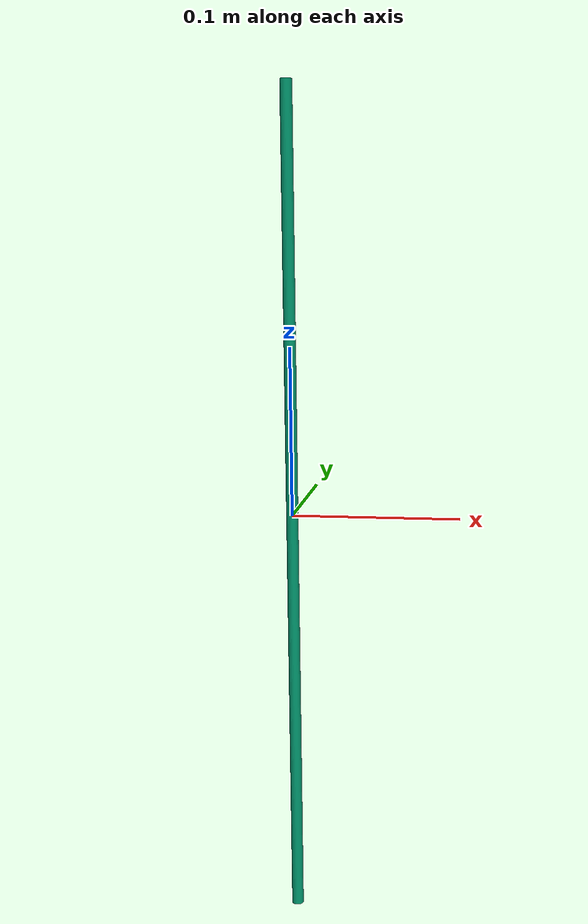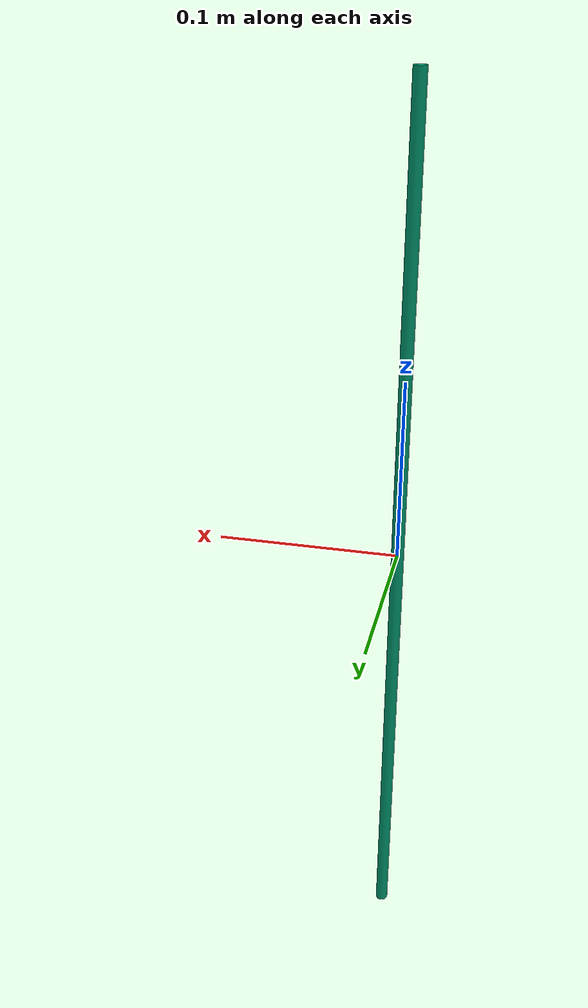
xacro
<?xml version="1.0"?>
<robot xmlns:xacro="http://www.ros.org/wiki/xacro" name="pole">
  <xacro:property name="PI" value="3.1415926535897931" />
  <xacro:property name="pole_l" value="0.5" />
  <xacro:property name="pole_r" value="0.0035" />
  <xacro:property name="pole_num_segments" value="40" />
  <xacro:property name="num_cylindrical_links" value="1" />

  <!-- Include statements for macros -->
  <xacro:include filename="cartesian_joint_macro.xacro"/>
  <xacro:include filename="spherical_joint_macro.xacro"/>
  <xacro:include filename="cylindrical_link_macro.xacro"/>

  <!-- Base link -->
  <link name="base_link"/>

  <!-- Instantiate the MAIN Cartesian Joint Macro -->
  <xacro:cartesian_joint prefix="cartesian" lower_limit="-0.5" upper_limit="0.5" effort="10000" velocity="1.5"/>

  <!-- Instantiate the MAIN Spherical Joint Macro -->
  <xacro:spherical_joint prefix="spherical" lower_limit="-${PI}" upper_limit="${PI}" effort="1" velocity="${PI/2}"/>

  <!-- Tool link is where the tip of the combined cartesian + spherical joints is at -->
  <link name="tool0"/>

  <!-- Connections between components -->

  <!-- Connect Cartesian joint system to the base -->
  <joint name="base_to_cartesian" type="fixed">
    <origin xyz="0 0 0" rpy="0 0 0"/>
    <parent link="base_link"/>
    <child link="cartesian_parent_link"/>
  </joint>

  <!-- Connect spherical joint to the top of the cartesian joint -->
  <joint name="cartesian_to_spherical" type="fixed">
    <origin xyz="0 0 0" rpy="0 0 0"/>
    <parent link="cartesian_z_link"/>
    <child link="spherical_parent_link"/>
  </joint>

  <!-- Connect the tool link with the the tip of the combined cartesian + spherical joints -->
  <joint name="spherical_to_tool0" type="fixed">
    <origin xyz="0 0 0" rpy="0 0 0"/>
    <parent link="spherical_roll_link"/>
    <child link="tool0"/>
  </joint>

  <!-- Instantiate the Cylindrical Link Macros -->
  <xacro:cylindrical_link prefix="cylindrical" length="${pole_l/num_cylindrical_links}" diameter="${2*pole_r}"/>

  <!-- Connect Cylindrical Link to the top of the tool -->
  <joint name="tool0_to_cylindrical" type="fixed">
    <origin xyz="0 0 0" rpy="0 0 0"/>
    <parent link="tool0"/>
    <child link="cylindrical_center_link"/>
  </joint>

  <!-- Create robot holding points as fixed links -->

  <xacro:macro name="add_pole_holder_link" params="segment_id num_segments pole_length">
    <link name="pole_holder_link_${segment_id}"></link>

    <joint name="pole_holder_fixed_joint_${segment_id}" type="fixed">
      <parent link="tool0"/>
      <child link="pole_holder_link_${segment_id}"/>
      <origin xyz="0 0 ${-pole_length/2 + (pole_length * (1 + 2 * segment_id)) / (2 * num_segments)}" rpy="0 0 0"/>
    </joint>
  </xacro:macro>

  <xacro:add_pole_holder_link segment_id="0" num_segments="${pole_num_segments}" pole_length="${pole_l}"/>
  <xacro:add_pole_holder_link segment_id="39" num_segments="${pole_num_segments}" pole_length="${pole_l}"/>
</robot>

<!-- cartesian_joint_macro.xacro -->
<robot xmlns:xacro="http://www.ros.org/wiki/xacro">
    <xacro:macro name="cartesian_joint" params="prefix lower_limit upper_limit effort velocity">
        <!-- Definition of links -->
        <link name="${prefix}_parent_link"/>
        <link name="${prefix}_x_link"/>
        <link name="${prefix}_y_link"/>
        <link name="${prefix}_z_link"/>

        <!-- Prismatic joint along X-axis -->
        <joint name="${prefix}_x_joint" type="prismatic">
            <origin xyz="0 0 0" rpy="0 0 0"/>
            <parent link="${prefix}_parent_link"/>
            <child link="${prefix}_x_link"/>
            <axis xyz="1 0 0"/>
            <limit lower="${lower_limit}" upper="${upper_limit}" effort="${effort}" velocity="${velocity}"/>
        </joint>

        <!-- Prismatic joint along Y-axis -->
        <joint name="${prefix}_y_joint" type="prismatic">
            <origin xyz="0 0 0" rpy="0 0 0"/>
            <parent link="${prefix}_x_link"/>
            <child link="${prefix}_y_link"/>
            <axis xyz="0 1 0"/>
            <limit lower="${lower_limit}" upper="${upper_limit}" effort="${effort}" velocity="${velocity}"/>
        </joint>

        <!-- Prismatic joint along Z-axis -->
        <joint name="${prefix}_z_joint" type="prismatic">
            <origin xyz="0 0 0" rpy="0 0 0"/>
            <parent link="${prefix}_y_link"/>
            <child link="${prefix}_z_link"/>
            <axis xyz="0 0 1"/>
            <limit lower="${lower_limit}" upper="${upper_limit}" effort="${effort}" velocity="${velocity}"/>
        </joint>
    </xacro:macro>
</robot>

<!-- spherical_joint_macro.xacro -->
<robot xmlns:xacro="http://www.ros.org/wiki/xacro">
    <xacro:macro name="spherical_joint" params="prefix lower_limit upper_limit effort velocity">
        <!-- Definition of links -->
        <link name="${prefix}_parent_link"/>
        <link name="${prefix}_roll_link"/>
        <link name="${prefix}_pitch_link"/>
        <link name="${prefix}_yaw_link"/>

        <!-- Revolute joint around Z-axis -->
        <joint name="${prefix}_yaw_joint" type="revolute">
            <origin xyz="0 0 0" rpy="0 0 0"/>
            <parent link="${prefix}_parent_link"/>
            <child link="${prefix}_yaw_link"/>
            <axis xyz="0 0 1"/>
            <limit lower="${lower_limit}" upper="${upper_limit}" effort="${effort}" velocity="${velocity}"/>
        </joint>

        <!-- Revolute joint around Y-axis -->
        <joint name="${prefix}_pitch_joint" type="revolute">
            <origin xyz="0 0 0" rpy="0 0 0"/>
            <parent link="${prefix}_yaw_link"/>
            <child link="${prefix}_pitch_link"/>
            <axis xyz="0 1 0"/>
            <limit lower="${lower_limit}" upper="${upper_limit}" effort="${effort}" velocity="${velocity}"/>
        </joint>

        <!-- Revolute joint around X-axis -->
        <joint name="${prefix}_roll_joint" type="revolute">
            <origin xyz="0 0 0" rpy="0 0 0"/>
            <parent link="${prefix}_pitch_link"/>
            <child link="${prefix}_roll_link"/>
            <axis xyz="1 0 0"/>
            <limit lower="${lower_limit}" upper="${upper_limit}" effort="${effort}" velocity="${velocity}"/>
        </joint>

    </xacro:macro>
</robot>

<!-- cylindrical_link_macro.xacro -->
<robot xmlns:xacro="http://www.ros.org/wiki/xacro">
    <xacro:include filename="materials.xacro"/>

    <xacro:macro name="cylindrical_link" params="prefix length diameter root='center'">
        <!-- Define the center link -->
        <xacro:if value="${root == 'center'}">
            <xacro:property name="center_origin" value="0 0 0"/>
            <xacro:property name="end1_origin" value="0 0 ${length / 2}"/>
            <xacro:property name="end2_origin" value="0 0 ${-length / 2}"/>

            <!-- Visual and collision for center link -->
            <link name="${prefix}_${root}_link">
                <visual>
                    <geometry>
                        <cylinder length="${length}" radius="${diameter / 2}"/>
                    </geometry>
                    <origin xyz="${center_origin}" rpy="0 0 0"/>
                    <material name="teal"/>
                </visual>
                <collision>
                    <geometry>
                        <cylinder length="${length}" radius="${diameter / 2}"/>
                    </geometry>
                    <origin xyz="${center_origin}" rpy="0 0 0"/>
                </collision>
            </link>
            <link name="${prefix}_end1_link"/>
            <link name="${prefix}_end2_link"/>

            <joint name="${prefix}_end1_joint" type="fixed">
                <origin xyz="${end1_origin}" rpy="0 0 0"/>
                <parent link="${prefix}_center_link"/>
                <child link="${prefix}_end1_link"/>
            </joint>

            <joint name="${prefix}_end2_joint" type="fixed">
                <origin xyz="${end2_origin}" rpy="0 0 0"/>
                <parent link="${prefix}_center_link"/>
                <child link="${prefix}_end2_link"/>
            </joint>
        </xacro:if>

        <!-- Define end1 as root -->
        <xacro:if value="${root == 'end1'}">
            <xacro:property name="center_origin" value="0 0 -${length / 2}"/>
            <xacro:property name="end1_origin" value="0 0 0"/>
            <xacro:property name="end2_origin" value="0 0 -${length}"/>

            <!-- Visual and collision for center link -->
            <link name="${prefix}_${root}_link">
                <visual>
                    <geometry>
                        <cylinder length="${length}" radius="${diameter / 2}"/>
                    </geometry>
                    <origin xyz="${center_origin}" rpy="0 0 0"/>
                    <material name="teal"/>
                </visual>
                <collision>
                    <geometry>
                        <cylinder length="${length}" radius="${diameter / 2}"/>
                    </geometry>
                    <origin xyz="${center_origin}" rpy="0 0 0"/>
                </collision>
            </link>
            <link name="${prefix}_center_link"/>
            <link name="${prefix}_end2_link"/>

            <joint name="${prefix}_center_joint" type="fixed">
                <origin xyz="${center_origin}" rpy="0 0 0"/>
                <parent link="${prefix}_end1_link"/>
                <child link="${prefix}_center_link"/>
            </joint>

            <joint name="${prefix}_end2_joint" type="fixed">
                <origin xyz="${end2_origin}" rpy="0 0 0"/>
                <parent link="${prefix}_end1_link"/>
                <child link="${prefix}_end2_link"/>
            </joint>
        </xacro:if>

        <!-- Define end2 as root -->
        <xacro:if value="${root == 'end2'}">
            <xacro:property name="center_origin" value="0 0 ${length / 2}"/>
            <xacro:property name="end1_origin" value="0 0 ${length}"/>
            <xacro:property name="end2_origin" value="0 0 0"/>

            <!-- Visual and collision for center link -->
            <link name="${prefix}_${root}_link">
                <visual>
                    <geometry>
                        <cylinder length="${length}" radius="${diameter / 2}"/>
                    </geometry>
                    <origin xyz="${center_origin}" rpy="0 0 0"/>
                    <material name="teal"/>
                </visual>
                <collision>
                    <geometry>
                        <cylinder length="${length}" radius="${diameter / 2}"/>
                    </geometry>
                    <origin xyz="${center_origin}" rpy="0 0 0"/>
                </collision>
            </link>
            <link name="${prefix}_end1_link"/>
            <link name="${prefix}_center_link"/>

            <joint name="${prefix}_center_joint" type="fixed">
                <origin xyz="${center_origin}" rpy="0 0 0"/>
                <parent link="${prefix}_end2_link"/>
                <child link="${prefix}_center_link"/>
            </joint>

            <joint name="${prefix}_end1_joint" type="fixed">
                <origin xyz="${end1_origin}" rpy="0 0 0"/>
                <parent link="${prefix}_end2_link"/>
                <child link="${prefix}_end1_link"/>
            </joint>
        </xacro:if>

    </xacro:macro>
</robot>
